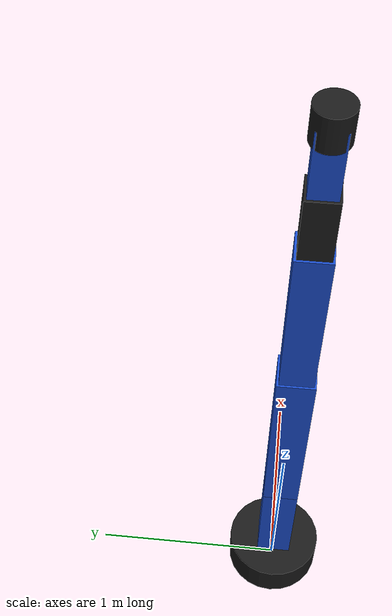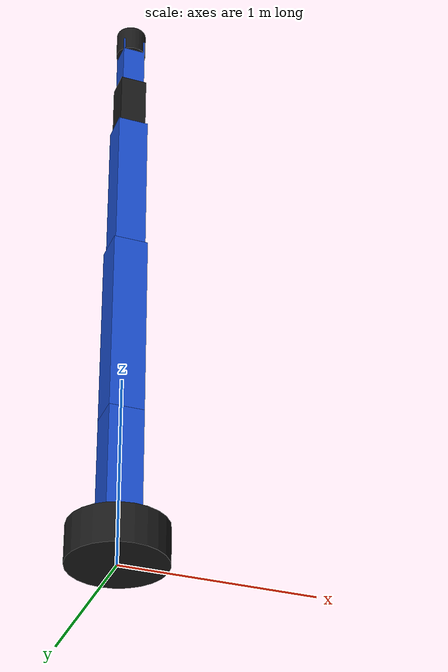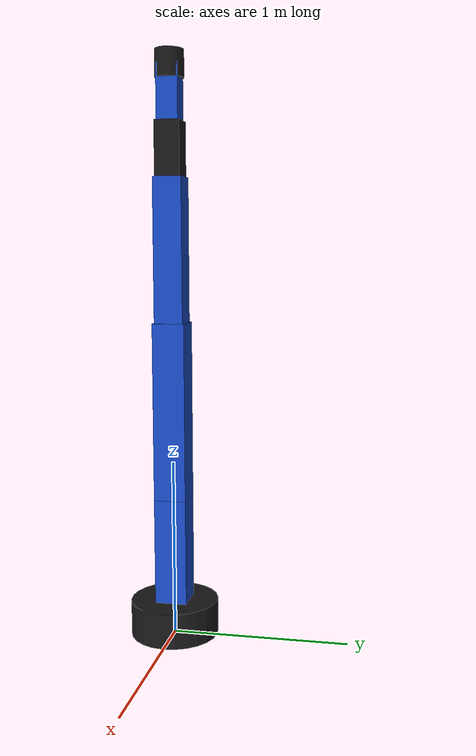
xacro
<robot xmlns:xacro="http://www.ros.org/wiki/xacro"
       name="robot_arm">

  <link name="world"/>

  <joint name="world_to_base" type="fixed">
    <parent link="world"/>
    <child link="base_link"/>
    <origin xyz="0 0 0" rpy="0 0 0"/>
  </joint>

  <!-- Materials             -->

  <material name="blue">
    <color rgba="0.1 0.3 0.8 1.0"/>
  </material>

  <material name="dark">
    <color rgba="0.1 0.1 0.1 1.0"/>
  </material>

  <!-- Base                  -->

  <link name="base_link">

    <visual>
      <origin xyz="0 0 0.1"/>
      <geometry>
        <cylinder radius="0.25" length="0.2"/>
      </geometry>
      <material name="dark"/>
    </visual>

    <collision>
      <origin xyz="0 0 0.1"/>
      <geometry>
        <cylinder radius="0.25" length="0.2"/>
      </geometry>
    </collision>
  <inertial>
      <origin xyz="0 0 0.1" rpy="0 0 0"/>
      <mass value="3.0"/>
      <inertia ixx="0.05" ixy="0.0" ixz="0.0" iyy="0.05" iyz="0.0" izz="0.05"/>
    </inertial>
  </link>

  <!-- Link 1                -->

  <link name="link1">

    <visual>
      <origin xyz="0 0 0.3"/>
      <geometry>
        <box size="0.18 0.18 0.6"/>
      </geometry>
      <material name="blue"/>
    </visual>

    <collision>
      <origin xyz="0 0 0.3"/>
      <geometry>
        <box size="0.18 0.18 0.6"/>
      </geometry>
    </collision>

    <inertial>
      <origin xyz="0 0 0.3"/>
      <mass value="2.0"/>
      <inertia
        ixx="0.1"
        ixy="0"
        ixz="0"
        iyy="0.1"
        iyz="0"
        izz="0.1"/>
    </inertial>

  </link>

  <!-- Joint 1               -->

  <joint name="joint1" type="revolute">

    <parent link="base_link"/>
    <child link="link1"/>

    <origin xyz="0 0 0.2"/>

    <axis xyz="0 0 1"/>

    <dynamics damping="25.0" friction="1.0"/>

    <limit
      lower="-3.14"
      upper="3.14"
      effort="60"
      velocity="1.0"/>

  </joint>

  <!-- Link 2                -->

  <link name="link2">

    <visual>
      <origin xyz="0 0 0.5"/>
      <geometry>
        <box size="0.18 0.18 1.0"/>
      </geometry>
      <material name="blue"/>
    </visual>

    <collision>
      <origin xyz="0 0 0.5"/>
      <geometry>
        <box size="0.18 0.18 1.0"/>
      </geometry>
    </collision>

    <inertial>
      <origin xyz="0 0 0.5"/>
      <mass value="2.0"/>
      <inertia
        ixx="0.2"
        ixy="0"
        ixz="0"
        iyy="0.2"
        iyz="0"
        izz="0.2"/>
    </inertial>

  </link>

  <!-- Joint 2               -->

  <joint name="joint2" type="revolute">

    <parent link="link1"/>
    <child link="link2"/>

    <origin xyz="0 0 0.6"/>

    <axis xyz="0 1 0"/>
    <dynamics damping="25.0" friction="1.0"/>
    <limit
      lower="-1.57"
      upper="1.57"
      effort="80"
      velocity="1.0"/>

  </joint>

  <!-- Link 3                -->

  <link name="link3">

    <visual>
      <origin xyz="0 0 0.4"/>
      <geometry>
        <box size="0.16 0.16 0.8"/>
      </geometry>
      <material name="blue"/>
    </visual>

    <collision>
      <origin xyz="0 0 0.4"/>
      <geometry>
        <box size="0.16 0.16 0.8"/>
      </geometry>
    </collision>
    <inertial>
      <origin xyz="0 0 0" rpy="0 0 0"/>
      <mass value="1.0"/>
        <inertia ixx="0.01" ixy="0.0" ixz="0.0" iyy="0.01" iyz="0.0" izz="0.01"/>
    </inertial>
  </link>

  <!-- Joint 3               -->

  <joint name="joint3" type="revolute">

    <parent link="link2"/>
    <child link="link3"/>

    <origin xyz="0 0 1.0"/>

    <axis xyz="0 1 0"/>
    <dynamics damping="18.0" friction="0.8"/>
    <limit
      lower="-2.0"
      upper="2.0"
      effort="60"
      velocity="1.0"/>

  </joint>

  <!-- Link 4                -->

  <link name="link4">

    <visual>
      <origin xyz="0 0 0.15"/>
      <geometry>
        <box size="0.14 0.14 0.3"/>
      </geometry>
      <material name="dark"/>
    </visual>

    <collision>
      <origin xyz="0 0 0.15"/>
      <geometry>
        <box size="0.14 0.14 0.3"/>
      </geometry>
    </collision>
    <inertial>
       <origin xyz="0 0 0" rpy="0 0 0"/>
       <mass value="1.0"/>
       <inertia ixx="0.01" ixy="0.0" ixz="0.0" iyy="0.01" iyz="0.0" izz="0.01"/>
    </inertial>
  </link>

  <!-- Joint 4               -->

  <joint name="joint4" type="revolute">

    <parent link="link3"/>
    <child link="link4"/>

    <origin xyz="0 0 0.8"/>

    <axis xyz="0 0 1"/>
    <dynamics damping="10.0" friction="0.4"/>
    <limit
      lower="-3.14"
      upper="3.14"
      effort="30"
      velocity="1.0"/>

  </joint>

  <!-- Link 5                -->

  <link name="link5">

    <visual>
      <origin xyz="0 0 0.15"/>
      <geometry>
        <box size="0.12 0.12 0.3"/>
      </geometry>
      <material name="blue"/>
    </visual>

    <collision>
      <origin xyz="0 0 0.15"/>
      <geometry>
        <box size="0.12 0.12 0.3"/>
      </geometry>
    </collision>
    <inertial>
       <origin xyz="0 0 0" rpy="0 0 0"/>
       <mass value="1.0"/>
           <inertia ixx="0.01" ixy="0.0" ixz="0.0" iyy="0.01" iyz="0.0" izz="0.01"/>
    </inertial>

  </link>

  <!-- Joint 5               -->

  <joint name="joint5" type="revolute">

    <parent link="link4"/>
    <child link="link5"/>

    <origin xyz="0 0 0.3"/>

    <axis xyz="0 1 0"/>
      <dynamics damping="10.0" friction="0.4"/>
    <limit
      lower="-1.57"
      upper="1.57"
      effort="25"
      velocity="1.0"/>

  </joint>

  <!-- End Effector          -->

  <link name="tool_link">

    <visual>
      <geometry>
        <cylinder radius="0.08" length="0.15"/>
      </geometry>
      <material name="dark"/>
    </visual>

    <inertial>
      <origin xyz="0 0 0" rpy="0 0 0"/>
      <mass value="0.3"/>
      <inertia ixx="0.001" ixy="0.0" ixz="0.0" iyy="0.001" iyz="0.0" izz="0.001"/>
    </inertial>

  </link>

  <!-- Joint 6               -->

  <joint name="joint6" type="revolute">

    <parent link="link5"/>
    <child link="tool_link"/>

    <origin xyz="0 0 0.3"/>

    <axis xyz="0 0 1"/>
  <dynamics damping="5.0" friction="0.2"/>
    <limit
      lower="-3.14"
      upper="3.14"
      effort="15"
      velocity="1.0"/>

  </joint>
  <ros2_control name="RobotArmSystem" type="system">
    <hardware>
      <plugin>gz_ros2_control/GazeboSimSystem</plugin>
    </hardware>
    <joint name="joint1">
      <command_interface name="position"/>
      <state_interface name="position"/>
      <state_interface name="velocity"/>
    </joint>
    <joint name="joint2">
      <command_interface name="position"/>
      <state_interface name="position"/>
      <state_interface name="velocity"/>
    </joint>
    <joint name="joint3">
      <command_interface name="position"/>
      <state_interface name="position"/>
      <state_interface name="velocity"/>
    </joint>
    <joint name="joint4">
      <command_interface name="position"/>
      <state_interface name="position"/>
      <state_interface name="velocity"/>
    </joint>
    <joint name="joint5">
      <command_interface name="position"/>
      <state_interface name="position"/>
      <state_interface name="velocity"/>
    </joint>
    <joint name="joint6">
      <command_interface name="position"/>
      <state_interface name="position"/>
      <state_interface name="velocity"/>
    </joint>
  </ros2_control>

   <gazebo>
    <plugin filename="gz_ros2_control-system" name="gz_ros2_control::GazeboSimROS2ControlPlugin">
      <parameters>/home/nandanan/robot_arm_ws/install/robot_arm_description/share/robot_arm_description/config/controllers.yaml</parameters>
      <robot_param>robot_description</robot_param>
      <robot_param_node>robot_state_publisher</robot_param_node>
      <position_proportional_gain>6.0</position_proportional_gain>
    </plugin>
  </gazebo>
</robot>
